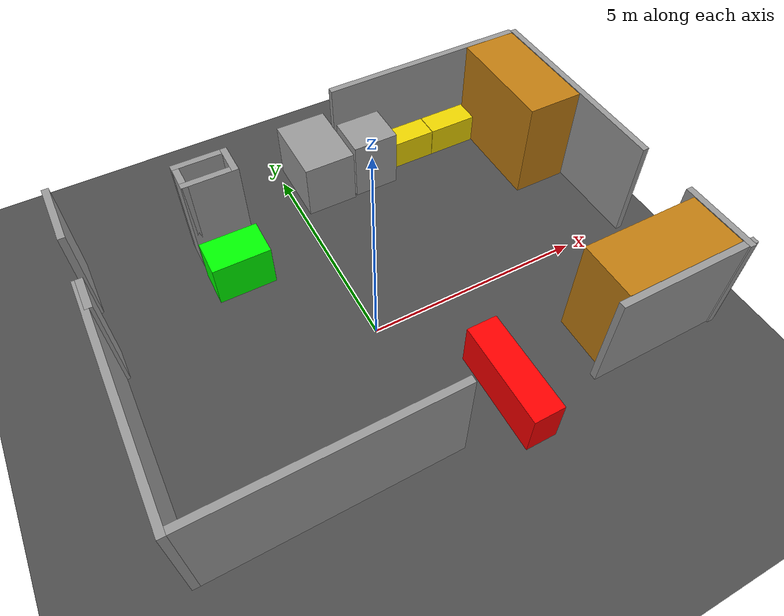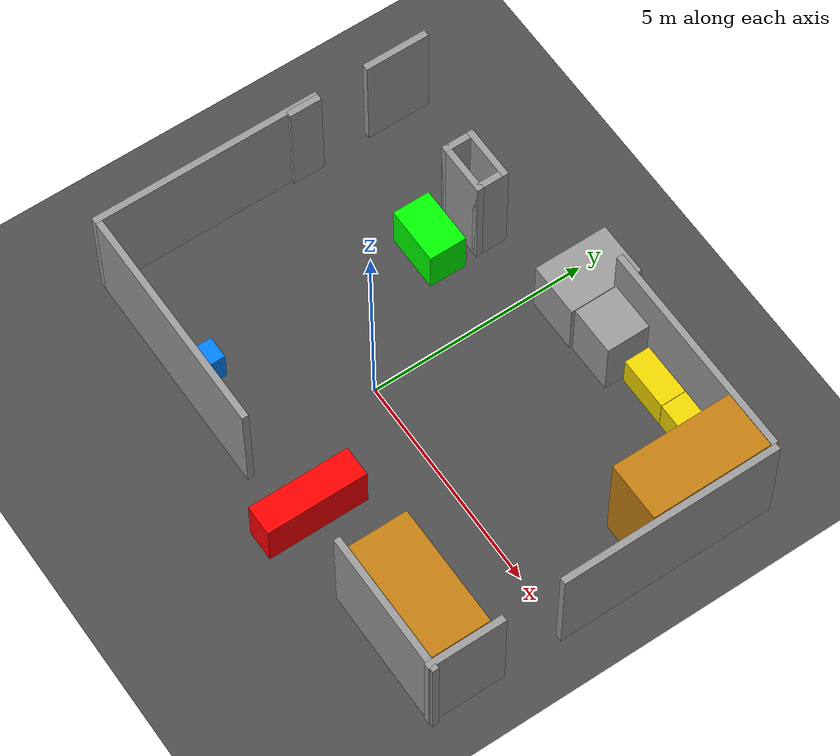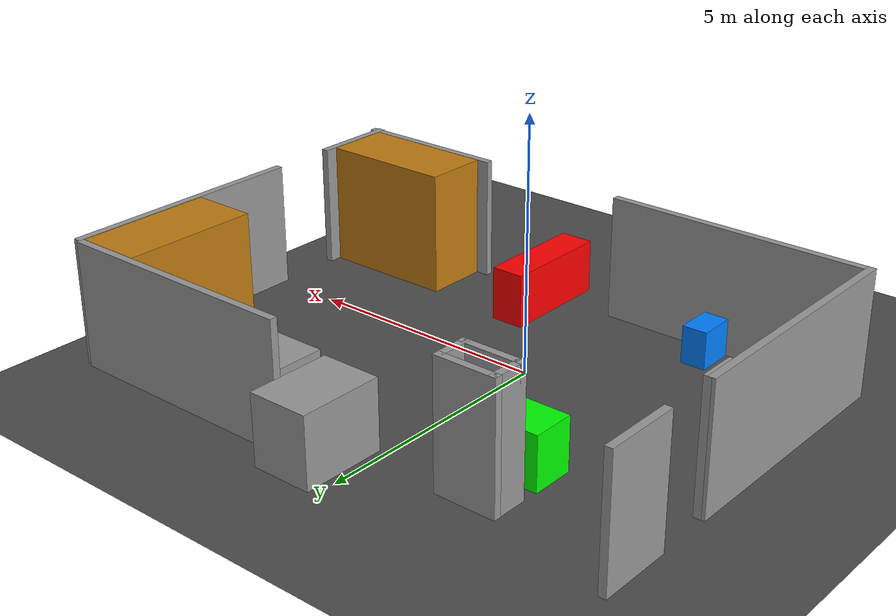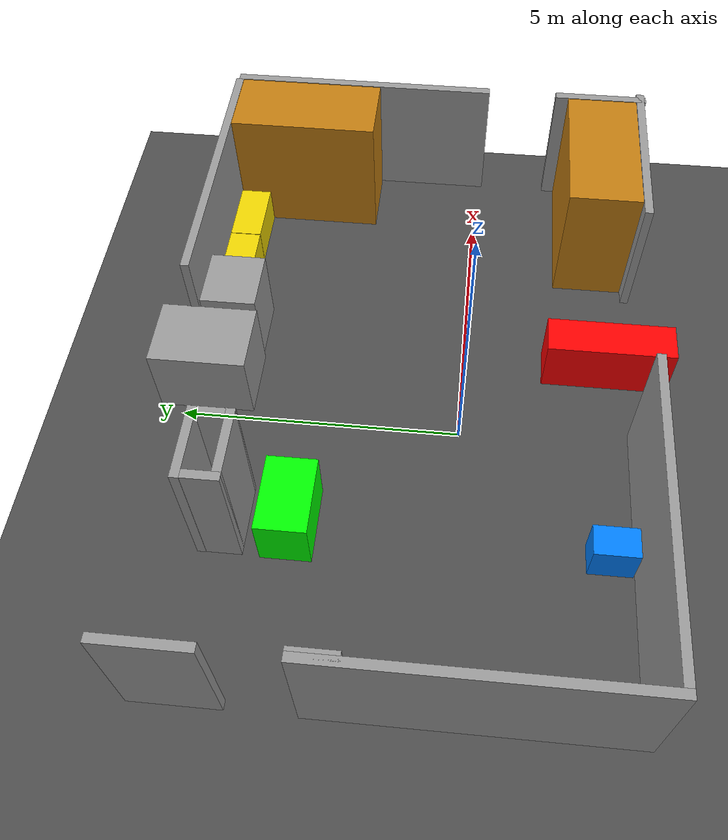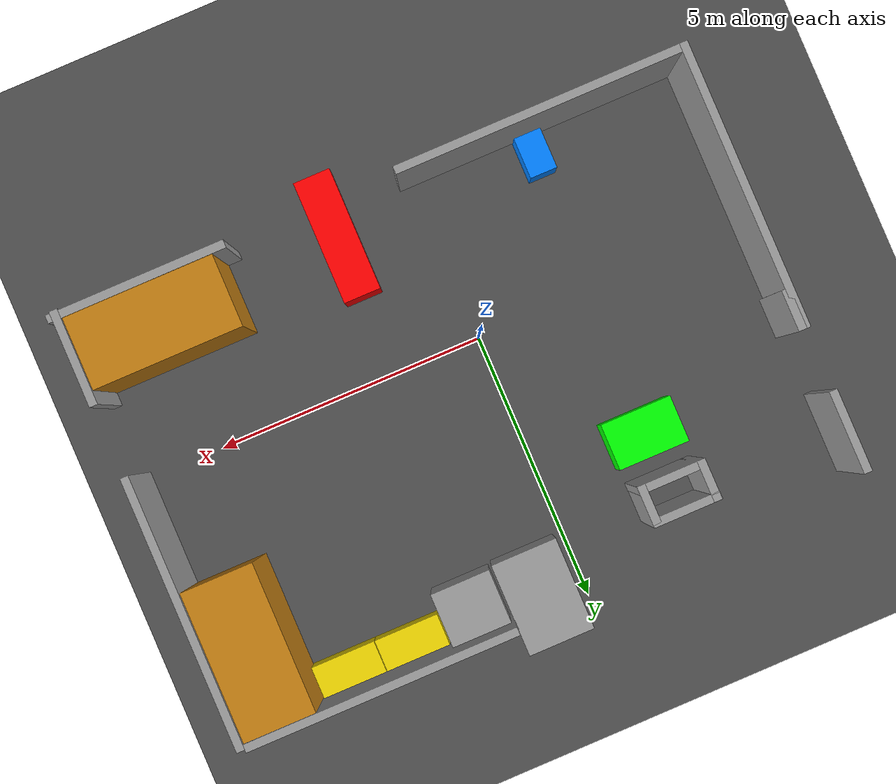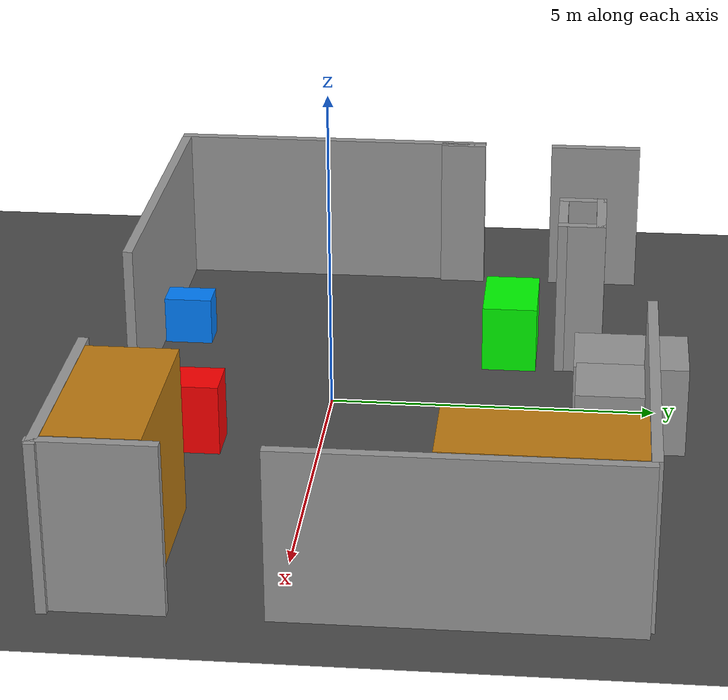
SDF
<sdf version="1.6">
 <world name="highbay_swarm_world">
  <plugin name="gazebo_occupancy_map" filename="libgazebo_2d_map_plugin.so">
   <map_resolution>0.1</map_resolution>
   <map_origin>0.0 0.0 0.0</map_origin>
   <map_size_x>14</map_size_x>
   <map_size_y>14</map_size_y>
   <init_robot_x>0.0</init_robot_x>
   <init_robot_y>0.0</init_robot_y>
  </plugin>
  <plugin filename="ignition-gazebo-collada-world-exporter-system" name="ignition::gazebo::systems::ColladaWorldExporter"/>
  <scene><ambient>0.4 0.4 0.4 1</ambient><background>0.7 0.7 0.7 1</background><shadows>1</shadows></scene>
  <gravity>0 0 -9.8</gravity>
  <magnetic_field>6e-06 2.3e-05 -4.2e-05</magnetic_field>
  <atmosphere type="adiabatic"/>
  <physics name="default_physics" default="0" type="ode">
   <max_step_size>0.001</max_step_size>
   <real_time_factor>1</real_time_factor>
   <real_time_update_rate>1000</real_time_update_rate>
  </physics>
  <light type="directional" name="sun">
   <pose>0 0 10 0 0 0</pose>
   <diffuse>0.8 0.8 0.8 1</diffuse>
   <specular>0.2 0.2 0.2 1</specular>
   <attenuation>
    <range>1000</range>
    <constant>0.9</constant>
    <linear>0.01</linear>
    <quadratic>0.0001</quadratic>
   </attenuation>
   <direction>-0.5 0.1 -0.9</direction>
  </light>
  <include><uri>model://ground_plane_custom</uri></include>
  <include><uri>model://highbay</uri><pose>0.73 0.88 0 0 -0 0</pose><static>1</static></include>
  <include>
   <uri>model://wall_table2</uri>
   <static>1</static>
   <name>wall_table2_1</name>
   <pose>4.42 4.5 0 0 -0 1.8e-05</pose>
  </include>
  <include>
   <uri>model://wall_table2</uri>
   <static>1</static>
   <name>wall_table2_2</name>
   <pose>3.21 4.5 0 0 -0 1.8e-05</pose>
  </include>
  <include>
   <uri>model://highbay_shelves</uri>
   <static>1</static>
   <pose>4.99 -2.33 0 0 -0 1.8e-05</pose>
   <name>highbay_shelves_1</name>
  </include>
  <include>
   <uri>model://highbay_shelves</uri>
   <static>1</static>
   <pose>5.7 3.41 0 0 -0 1.57</pose>
   <name>highbay_shelves_2</name>
  </include>
  <include><uri>model://sand_blaster_and_brake</uri><static>1</static><pose>0.78 4.60 0 0 -0 0</pose></include>
  <include><uri>model://abb_control_box</uri><static>1</static><pose>2.0 4.29 0 0 -0 0</pose></include>
  <include>
   <uri>model://mega_stitch</uri>
   <static>1</static>
   <pose>1.6 -2.6 0 0 -0 1.57</pose>
   <name>ws_1</name>
  </include>
  <include>
   <uri>model://rf_welder</uri>
   <static>1</static>
   <pose>-2.0 2.7 0 0 -0 0</pose>
   <name>ws_2</name>
  </include>
  <include>
   <uri>model://sewing_short_arm</uri>
   <static>1</static>
   <pose>-2.20 -2.6 0 0 -0 1.57</pose>
   <name>ws_3</name>
  </include>
 </world>
</sdf>
